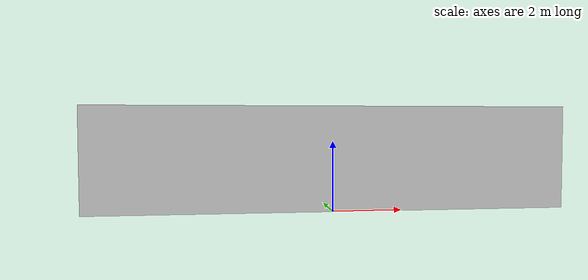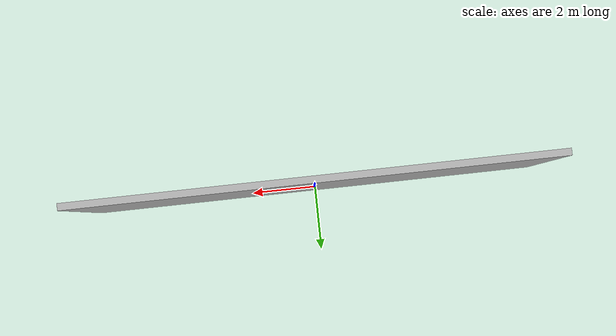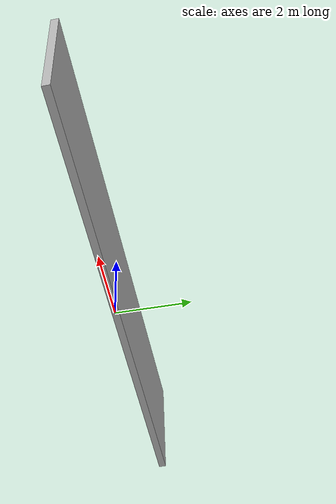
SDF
<?xml version="1.0"?>
<sdf version="1.7">

    <model name="new_wall_1">
        <static>true</static>
        <link name="link">
            <pose>0 0 1.5 0 0 0</pose>
            <collision name="collision">
                <geometry>
                    <box>
                        <size>13.8 0.2 3.0</size>
                    </box>
                </geometry>
            </collision>

            <visual name="visual">
                <cast_shadows>false</cast_shadows>
                <geometry>
                    <box>
                        <size>13.8 0.2 3.0</size>
                    </box>
                </geometry>

            </visual>
        </link>
    </model>

</sdf>
